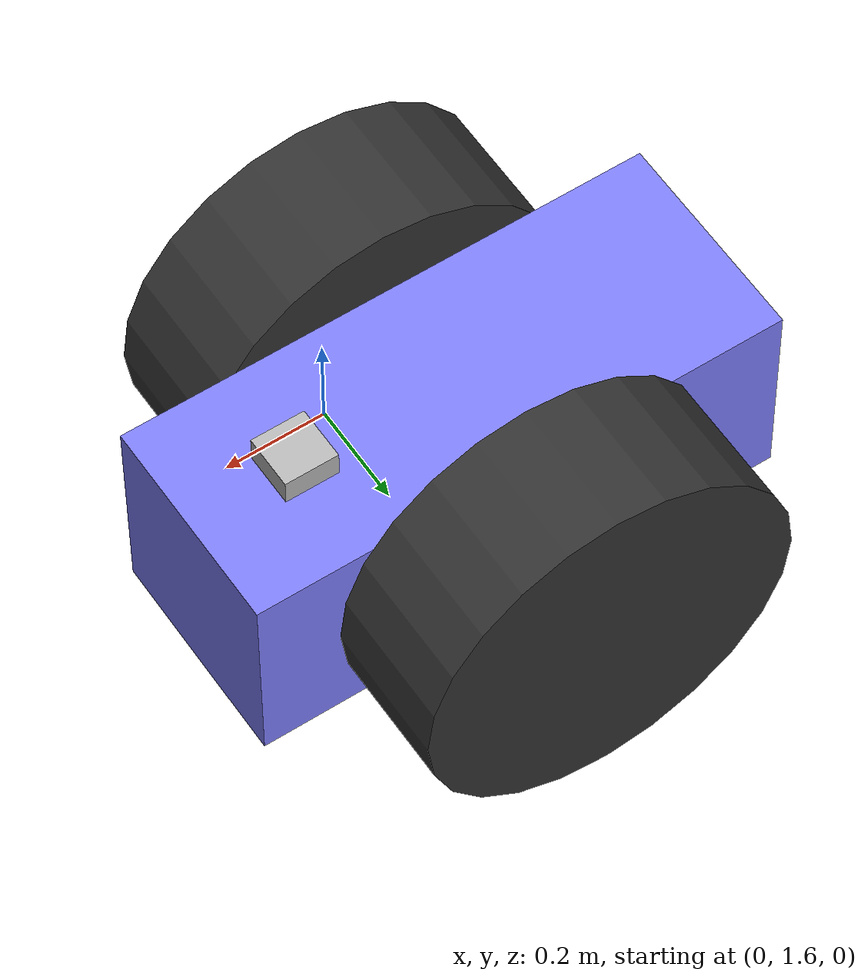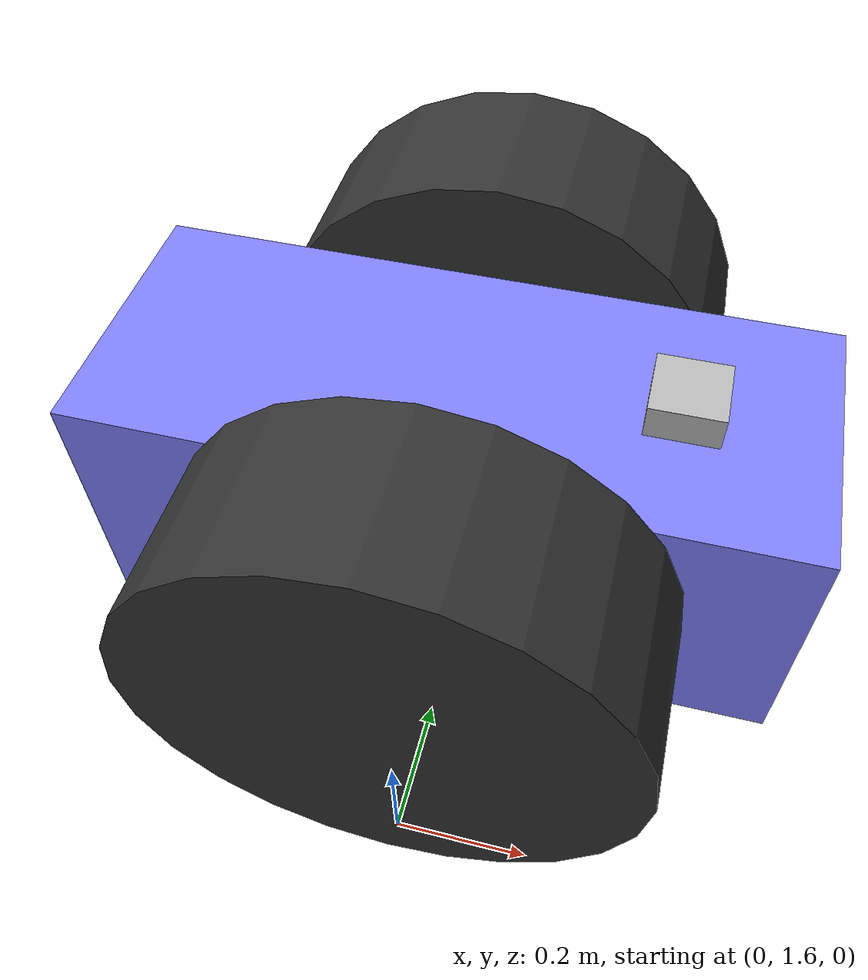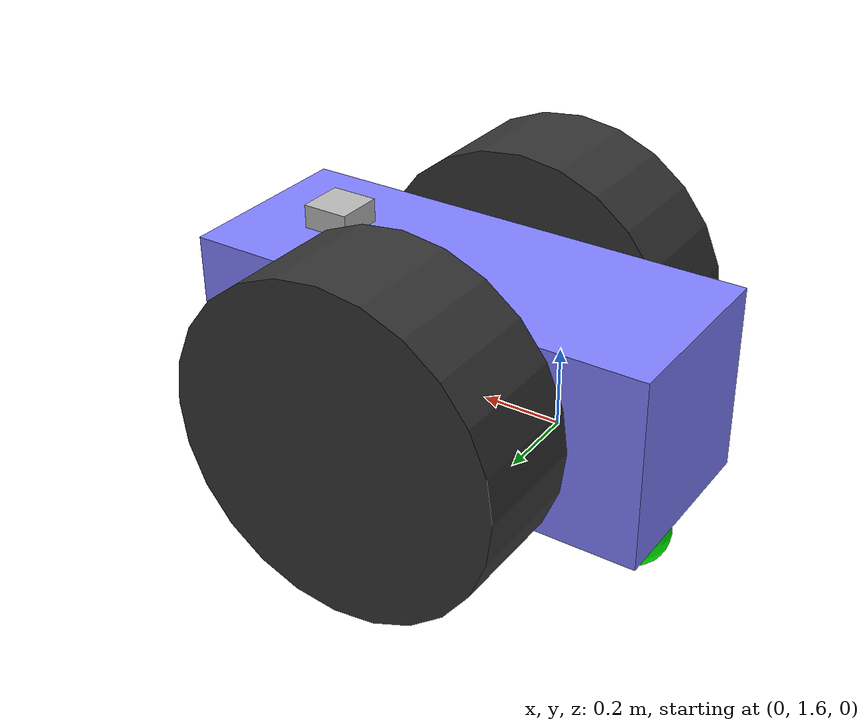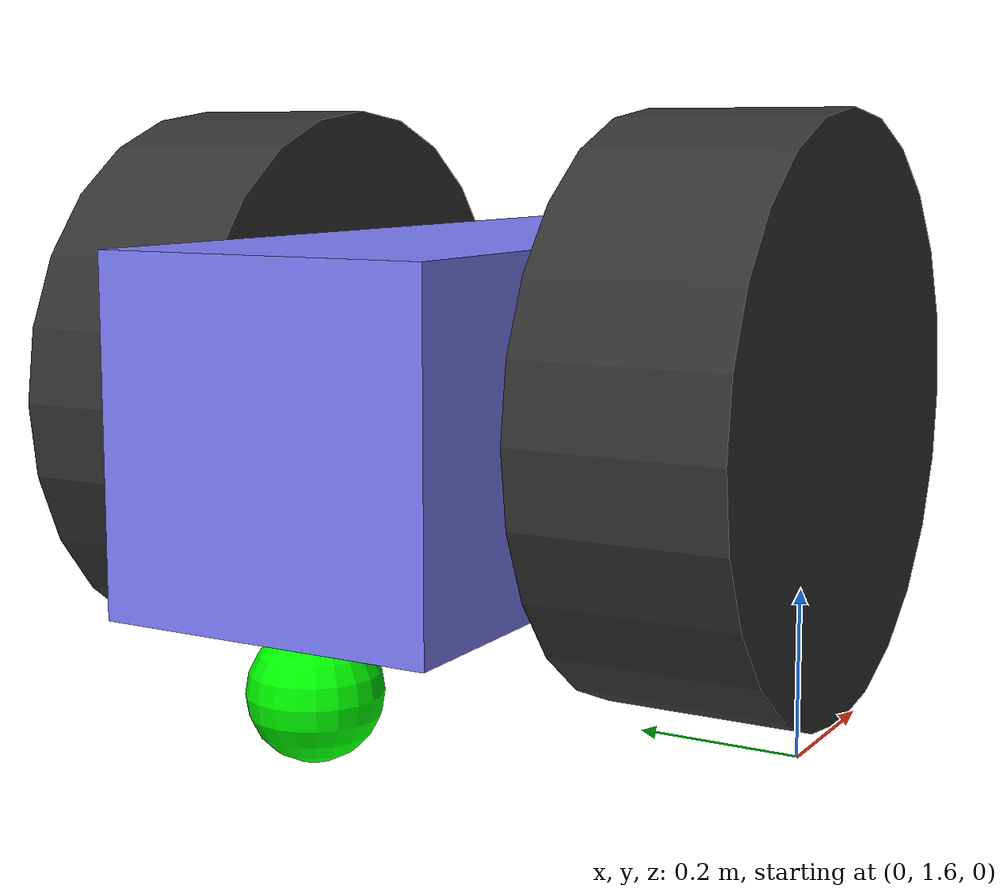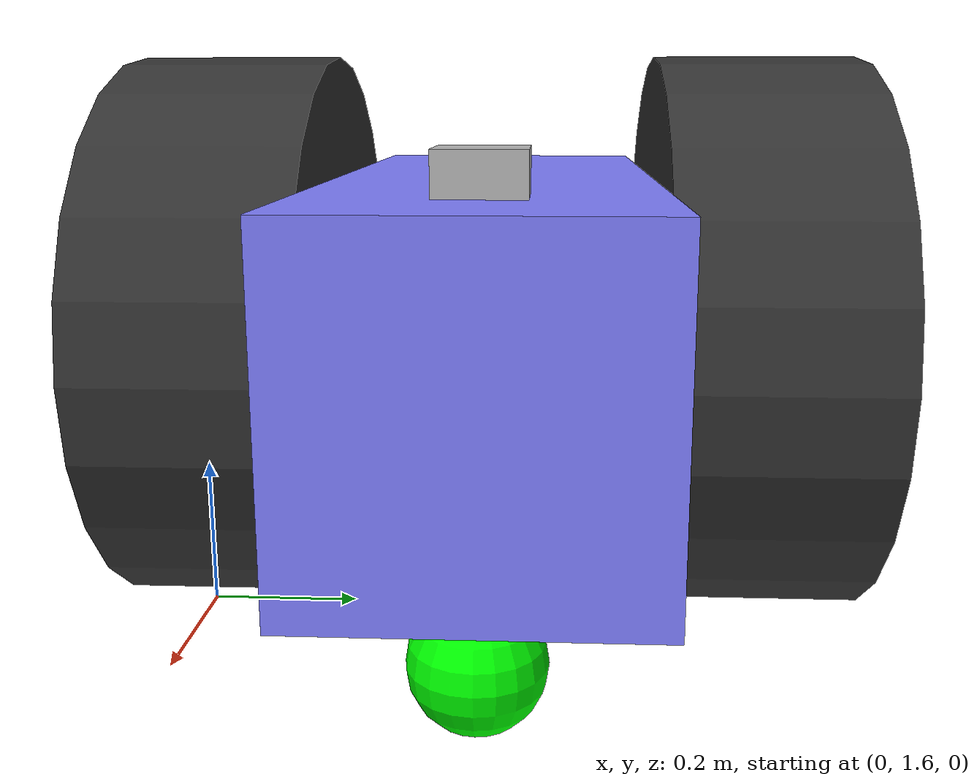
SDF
<?xml version="1.0"?>
<sdf version="1.8">
    <model name='mad_bot'>
        <pose>0 2 0 0 0 0</pose>
        <link name='chassis'>
            <pose>0 0 0.4 0 0 0</pose>
            <inertial>
                <mass>18</mass>
                <inertia>
                    <ixx>0.24</ixx>
                    <ixy>0</ixy>
                    <ixz>0</ixz>
                    <iyy>1.5</iyy>
                    <iyz>0</iyz>
                    <izz>1.74</izz>
                </inertia>
            </inertial>
            <visual name='visual'>
                <geometry>
                    <box>
                        <size>1 0.4 0.4</size>
                    </box>
                </geometry>
                <material>
                    <ambient>0.5 0.5 1.0 1</ambient>
                    <diffuse>0.5 0.5 1.0 1</diffuse>
                    <specular>0.0 0.0 1.0 1</specular>
                </material>
            </visual>
            <collision name='collision'>
                <geometry>
                    <box>
                        <size>1 0.4 0.4</size>
                    </box>
                </geometry>
            </collision>
        </link>

        <link name='left_wheel'>
            <pose relative_to="chassis">0 0.325 0 -1.5707 0 0</pose>
            <inertial>
                <mass>2.5</mass>
                <inertia>
                    <ixx>0.12</ixx>
                    <ixy>0</ixy>
                    <ixz>0</ixz>
                    <iyy>0.12</iyy>
                    <iyz>0</iyz>
                    <izz>0.1</izz>
                </inertia>
            </inertial>
            <visual name='visual'>
                <geometry>
                    <cylinder>
                        <radius>0.35</radius>
                        <length>0.25</length>
                    </cylinder>
                </geometry>
                <material>
                    <ambient>0.2 0.2 0.2 1</ambient>
                    <diffuse>0.2 0.2 0.2 1</diffuse>
                    <specular>0.2 0.2 0.2 1</specular>
                </material>
            </visual>
            <collision name='collision'>
                <geometry>
                    <cylinder>
                        <radius>0.35</radius>
                        <length>0.25</length>
                    </cylinder>
                </geometry>
            </collision>
        </link>

        <link name='right_wheel'>
            <pose relative_to="chassis">0 -0.325 0 -1.5707 0 0</pose>
            <inertial>
                <mass>2.5</mass>
                <inertia>
                    <ixx>0.12</ixx>
                    <ixy>0</ixy>
                    <ixz>0</ixz>
                    <iyy>0.12</iyy>
                    <iyz>0</iyz>
                    <izz>0.1</izz>
                </inertia>
            </inertial>
            <visual name='visual'>
                <geometry>
                    <cylinder>
                        <radius>0.35</radius>
                        <length>0.25</length>
                    </cylinder>
                </geometry>
                <material>
                    <ambient>0.2 0.2 0.2 1</ambient>
                    <diffuse>0.2 0.2 0.2 1</diffuse>
                    <specular>0.2 0.2 0.2 1</specular>
                </material>
            </visual>
            <collision name='collision'>
                <geometry>
                    <cylinder>
                        <radius>0.35</radius>
                        <length>0.25</length>
                    </cylinder>
                </geometry>
            </collision>
        </link>

        <link name='caster_front'>
            <pose relative_to='chassis'>-0.4 0 -0.275 0 0 0</pose> <!-- Adjusted height to -0.4 -->
            <inertial>
                <mass>1</mass>
                <inertia>
                    <ixx>0.016</ixx>
                    <ixy>0</ixy>
                    <ixz>0</ixz>
                    <iyy>0.016</iyy>
                    <iyz>0.0</iyz> <!-- Corrected if necessary -->
                    <izz>0.016</izz>
                </inertia>
            </inertial>
            <visual name='visual'>
                <geometry>
                    <sphere>
                        <radius>0.075</radius> <!-- Increased radius for more stability -->
                    </sphere>
                </geometry>
                <material>
                    <ambient>0.0 1 0.0 1</ambient>
                    <diffuse>0.0 1 0.0 1</diffuse>
                    <specular>0.0 1 0.0 1</specular>
                </material>
            </visual>
            <collision name='collision'>
                <geometry>
                    <sphere>
                        <radius>0.075</radius>
                    </sphere>
                </geometry>
            </collision>
        </link>

        <link name='caster_back'>
            <pose relative_to='chassis'>0.4 0 -0.275 0 0 0</pose> <!-- Adjusted height to -0.4 -->
            <inertial>
                <mass>1</mass>
                <inertia>
                    <ixx>0.016</ixx>
                    <ixy>0</ixy>
                    <ixz>0</ixz>
                    <iyy>0.016</iyy>
                    <iyz>0.0</iyz> <!-- Corrected if necessary -->
                    <izz>0.016</izz>
                </inertia>
            </inertial>
            <visual name='visual'>
                <geometry>
                    <sphere>
                        <radius>0.075</radius> <!-- Increased radius for more stability -->
                    </sphere>
                </geometry>
                <material>
                    <ambient>0.0 1 0.0 1</ambient>
                    <diffuse>0.0 1 0.0 1</diffuse>
                    <specular>0.0 1 0.0 1</specular>
                </material>
            </visual>
            <collision name='collision'>
                <geometry>
                    <sphere>
                        <radius>0.075</radius>
                    </sphere>
                </geometry>
            </collision>
        </link>
        <link name="camera_link">
            <pose relative_to="chassis">0.3 0 0.225 0 0 0</pose>
            <collision name="collision">
                <geometry>
                    <box>
                        <size>0.1 0.1 0.05</size>
                    </box>
                </geometry>
            </collision>
            <visual name="visual">
                <geometry>
                    <box>
                        <size>0.1 0.1 0.05</size>
                    </box>
                </geometry>
            </visual>
            <sensor type="camera" name="camera_sensor">
                <update_rate>60</update_rate>
                <visualize>true</visualize>
                <camera name="head">
                    <horizontal_fov>1.5708</horizontal_fov>
                    <image>
                        <width>1280</width>
                        <height>720</height>
                        <format>R8G8B8</format>
                    </image>
                    <clip>
                        <near>0.02</near>
                        <far>50</far>
                    </clip>
                </camera>
                <plugin
                    filename="ignition-gazebo-sensors-system"
                    name="gz::sim::systems::Sensors">
                    <render_engine>ogre2</render_engine>
                </plugin>
            </sensor>
        </link>
        <joint name='left_wheel_joint' type='revolute'>
            <parent>chassis</parent>
            <child>left_wheel</child>
            <axis>
                <xyz>0 0 1</xyz>
                <limit>
                    <lower>-1000</lower>
                    <upper>1000</upper>
                    <effort>10</effort>
                </limit>
            </axis>
        </joint>
        <joint name='right_wheel_joint' type='revolute'>
            <parent>chassis</parent>
            <child>right_wheel</child>
            <axis>
                <xyz>0 0 1</xyz>
                <limit>
                    <lower>-1000</lower>
                    <upper>1000</upper>
                    <effort>10</effort>
                </limit>
            </axis>
        </joint>
        <joint name='front_caster_joint' type='ball'>
            <parent>chassis</parent>
            <child>caster_front</child>
        </joint>
        <joint name='back_caster_joint' type='ball'>
            <parent>chassis</parent>
            <child>caster_back</child>
        </joint>
        <joint name="camera_joint" type="fixed">
            <parent>chassis</parent>
            <child>camera_link</child>
        </joint>
        <plugin
            filename="ignition-gazebo-diff-drive-system"
            name="gz::sim::systems::DiffDrive">
            <left_joint>left_wheel_joint</left_joint>
            <right_joint>right_wheel_joint</right_joint>
            <wheel_separation>0.4</wheel_separation>
            <wheel_radius>0.35</wheel_radius>
            <odom_publish_frequency>5</odom_publish_frequency>
            <max_linear_acceleration>2.0</max_linear_acceleration>
            <min_linear_acceleration>-2.0</min_linear_acceleration>
            <max_angular_acceleration>3.0</max_angular_acceleration>
            <min_angular_acceleration>-3.0</min_angular_acceleration>
            <max_linear_velocity>1.0</max_linear_velocity>
            <min_linear_velocity>-1.0</min_linear_velocity>
            <max_angular_velocity>2.0</max_angular_velocity>
            <min_angular_velocity>-2.0</min_angular_velocity>
        </plugin>
    </model>
</sdf>
